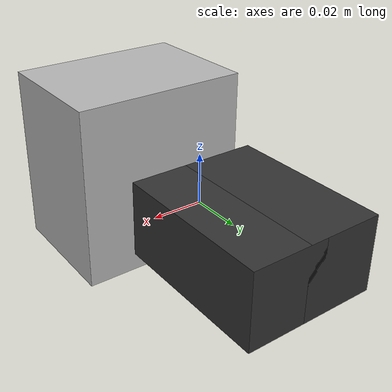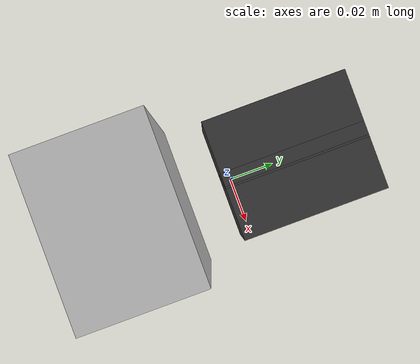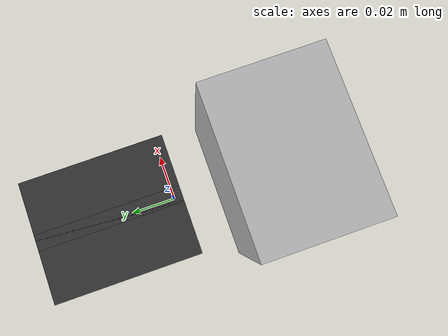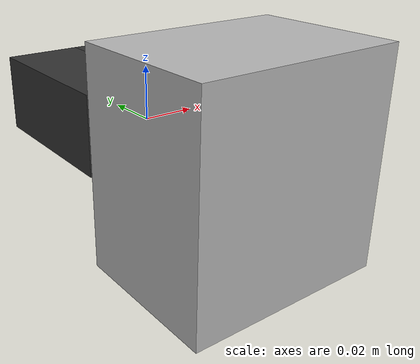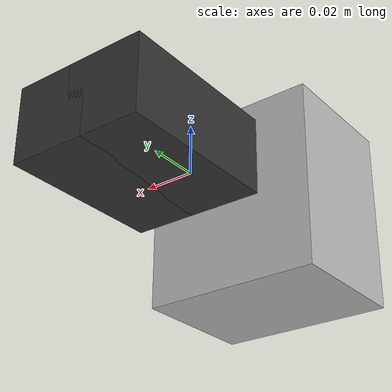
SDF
<?xml version="1.0"?>
<sdf version="1.7">
  <model name="wedge">
    <link name="wedge_root">
      <pose>0 -0.049133 0 0 0 0</pose>
      <visual name="visual">
        <geometry>
          <box>
            <size>0.072 0.053 0.075</size>
          </box>
        </geometry>
      </visual>
      <collision name="collision">
        <laser_retro>0</laser_retro>
        <geometry>
          <box>
            <size>0.075 0.072 0.053</size>
          </box>
        </geometry>
        <surface>
          <contact>
            <collide_without_contact>0</collide_without_contact>
            <collide_without_contact_bitmask>1</collide_without_contact_bitmask>
            <collide_bitmask>1</collide_bitmask>
            <ode>
              <soft_cfm>0</soft_cfm>
              <soft_erp>0.2</soft_erp>
              <kp>1e+13</kp>
              <kd>1</kd>
              <max_vel>0.01</max_vel>
              <min_depth>0</min_depth>
            </ode>
            <bullet>
              <split_impulse>1</split_impulse>
              <split_impulse_penetration_threshold>-0.01</split_impulse_penetration_threshold>
              <soft_cfm>0</soft_cfm>
              <soft_erp>0.2</soft_erp>
              <kp>1e+13</kp>
              <kd>1</kd>
            </bullet>
          </contact>
        </surface>
      </collision>
    </link>
    <frame name="wedge_root_frame">
      <pose relative_to="wedge_root"/>
    </frame>
    <link name="tcp">
      <pose relative_to="wedge_root"/>
    </link>
    <link name="left_finger">
      <pose>-0.0115 0.028 0 0 3.141592 0</pose>
      <inertial>
        <mass>0.05</mass>
        <inertia>
          <ixx>0.16</ixx>
          <ixy>0</ixy>
          <ixz>0</ixz>
          <iyy>0.16</iyy>
          <iyz>0</iyz>
          <izz>0.16</izz>
        </inertia>
      </inertial>
      <kinematic>0</kinematic>
      <visual name="visual">
        <geometry>
          <box>
            <size>0.030 0.064 0.030</size>
          </box>
        </geometry>
        <material>
          <diffuse>0.2 0.2 0.2 1</diffuse>
        </material>
      </visual>
      <collision name="left_top">
        <pose> -0.008 0.021 0 0 0 0 </pose>
        <geometry>
          <sphere>
            <radius> 0.001 </radius>
          </sphere>
        </geometry>
      </collision>
      <collision name="left_bottom">
        <pose> -0.008 0.041 0 0 0 0 </pose>
        <geometry>
          <sphere>
            <radius> 0.001 </radius>
          </sphere>
        </geometry>
      </collision>
      <collision name="left_left">
        <pose> -0.008 0.031 -0.01 0 0 0 </pose>
        <geometry>
          <sphere>
            <radius> 0.001 </radius>
          </sphere>
        </geometry>
      </collision>
      <collision name="left_right">
        <pose> -0.008 0.031 0.01 0 0 0 </pose>
        <geometry>
          <sphere>
            <radius> 0.001 </radius>
          </sphere>
        </geometry>
      </collision>
      <collision name="collision">
        <laser_retro>0</laser_retro>
        <geometry>
          <box>
            <size>0.030 0.064 0.030</size>
          </box>
        </geometry>
        <surface>
          <friction>
            <ode>
              <mu>1</mu>
              <mu2>1</mu2>
              <fdir1>0 0 0</fdir1>
              <slip1>0</slip1>
              <slip2>0</slip2>
            </ode>
            <torsional>
              <coefficient>1</coefficient>
              <patch_radius>0</patch_radius>
              <surface_radius>0</surface_radius>
              <use_patch_radius>1</use_patch_radius>
              <ode>
                <slip>0</slip>
              </ode>
            </torsional>
          </friction>
          <bounce>
            <restitution_coefficient>0</restitution_coefficient>
            <threshold>1e+06</threshold>
          </bounce>
          <contact>
            <collide_without_contact>0</collide_without_contact>
            <collide_without_contact_bitmask>1</collide_without_contact_bitmask>
            <collide_bitmask>1</collide_bitmask>
            <ode>
              <soft_cfm>0</soft_cfm>
              <soft_erp>0.2</soft_erp>
              <kp>1e+13</kp>
              <kd>1</kd>
              <max_vel>0.01</max_vel>
              <min_depth>0</min_depth>
            </ode>
            <bullet>
              <split_impulse>1</split_impulse>
              <split_impulse_penetration_threshold>-0.01</split_impulse_penetration_threshold>
              <soft_cfm>0</soft_cfm>
              <soft_erp>0.2</soft_erp>
              <kp>1e+13</kp>
              <kd>1</kd>
            </bullet>
          </contact>
        </surface>
      </collision>
    </link>
    <link name="right_finger">
      <pose>0.0115 0.028 0 0 0 0</pose>
      <visual name="visual">
        <geometry>
          <box>
            <size>0.030 0.064 0.030</size>
          </box>
        </geometry>
        <material>
          <diffuse>0.2 0.2 0.2 1</diffuse>
        </material>
      </visual>
      <collision name="right_top">
        <pose> -0.008 0.021 0 0 0 0 </pose>
        <geometry>
          <sphere>
            <radius> 0.001 </radius>
          </sphere>
        </geometry>
      </collision>
      <collision name="right_bottom">
        <pose> -0.008 0.041 0 0 0 0 </pose>
        <geometry>
          <sphere>
            <radius> 0.001 </radius>
          </sphere>
        </geometry>
      </collision>
      <collision name="right_left">
        <pose> -0.008 0.031 -0.01 0 0 0 </pose>
        <geometry>
          <sphere>
            <radius> 0.001 </radius>
          </sphere>
        </geometry>
      </collision>
      <collision name="right_right">
        <pose> -0.008 0.031 0.01 0 0 0 </pose>
        <geometry>
          <sphere>
            <radius> 0.001 </radius>
          </sphere>
        </geometry>
      </collision>
      <collision name="collision">
        <laser_retro>0</laser_retro>
        <geometry>
          <box>
            <size>0.030 0.064 0.030</size>
          </box>
        </geometry>
        <surface>
          <friction>
            <ode>
              <mu>1</mu>
              <mu2>1</mu2>
              <fdir1>0 0 0</fdir1>
              <slip1>0</slip1>
              <slip2>0</slip2>
            </ode>
            <torsional>
              <coefficient>1</coefficient>
              <patch_radius>0</patch_radius>
              <surface_radius>0</surface_radius>
              <use_patch_radius>1</use_patch_radius>
              <ode>
                <slip>0</slip>
              </ode>
            </torsional>
          </friction>
          <bounce>
            <restitution_coefficient>0</restitution_coefficient>
            <threshold>1e+06</threshold>
          </bounce>
          <contact>
            <collide_without_contact>0</collide_without_contact>
            <collide_without_contact_bitmask>1</collide_without_contact_bitmask>
            <collide_bitmask>1</collide_bitmask>
            <ode>
              <soft_cfm>0</soft_cfm>
              <soft_erp>0.2</soft_erp>
              <kp>1e+13</kp>
              <kd>1</kd>
              <max_vel>0.01</max_vel>
              <min_depth>0</min_depth>
            </ode>
            <bullet>
              <split_impulse>1</split_impulse>
              <split_impulse_penetration_threshold>-0.01</split_impulse_penetration_threshold>
              <soft_cfm>0</soft_cfm>
              <soft_erp>0.2</soft_erp>
              <kp>1e+13</kp>
              <kd>1</kd>
            </bullet>
          </contact>
        </surface>
      </collision>
    </link>
    <joint name="left_finger_sliding_joint" type="prismatic">
      <parent>wedge_root</parent>
      <child>left_finger</child>
      <axis>
        <xyz>-1 0 0</xyz>
        <!-- Drake attaches an actuator to all and only joints with a nonzero
             effort limit. -->
        <limit>
          <lower>-0.025</lower>
          <upper>0</upper>
          <effort>80</effort>
          <stiffness>15000</stiffness>
        </limit>
        <dynamics>
          <spring_reference>0</spring_reference>
          <spring_stiffness>0</spring_stiffness>
          <damping>0</damping>
          <friction>0</friction>
        </dynamics>
      </axis>
    </joint>
    <joint name="right_finger_sliding_joint" type="prismatic">
      <parent>wedge_root</parent>
      <child>right_finger</child>
      <axis>
        <xyz>1 0 0</xyz>
        <!-- Drake attaches an actuator to all and only joints with a nonzero
             effort limit. -->
        <limit>
          <lower>0</lower>
          <upper>0.025</upper>
          <effort>80</effort>
          <stiffness>15000</stiffness>
        </limit>
        <dynamics>
          <spring_reference>0</spring_reference>
          <spring_stiffness>0</spring_stiffness>
          <damping>0</damping>
          <friction>0</friction>
        </dynamics>
      </axis>
    </joint>
    <static>0</static>
  </model>
</sdf>
